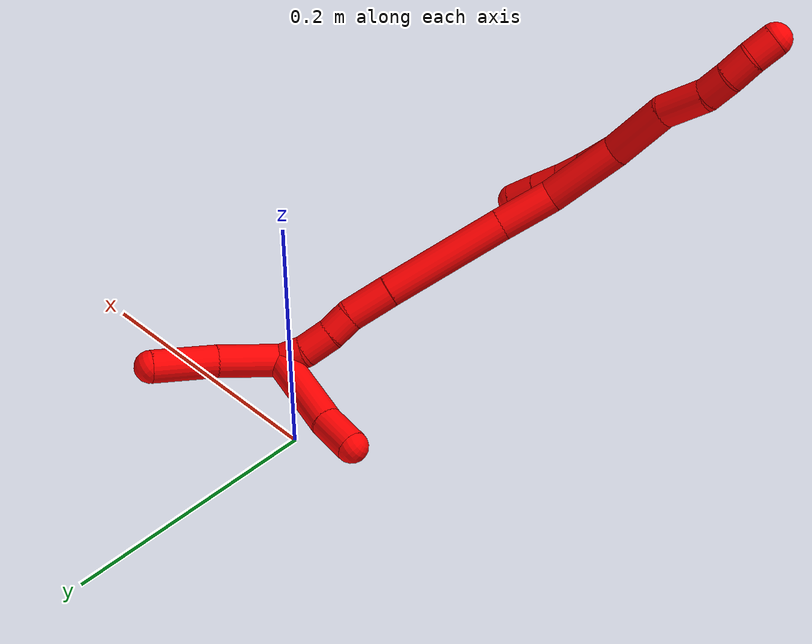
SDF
<sdf version="1.7">
 <world name="default">
  <model name="2">
   <static>0</static>
   <link name="2">
    <collision name="collision-cylinder-e_1_2_8">
     <pose>0.001265 0.006139 0.024321 -0.247232 0.050405 -0.006264</pose>
     <geometry><cylinder><radius>0.0125</radius><length>0.050232</length></cylinder></geometry>
     <surface>
      <friction><ode><mu>1.16</mu><mu2>1.16</mu2><slip1>0</slip1><slip2>0</slip2></ode></friction>
      <contact><ode><kp>1e+06</kp><kd>1</kd><max_vel>0</max_vel><min_depth>0.001</min_depth></ode></contact>
     </surface>
    </collision>
    <visual name="visual-cylinder-e_1_2_8">
     <pose>0.001265 0.006139 0.024321 -0.247232 0.050405 -0.006264</pose>
     <geometry><cylinder><radius>0.0125</radius><length>0.050232</length></cylinder></geometry>
     <material><ambient>1 0 0 1</ambient></material>
    </visual>
    <collision name="collision-cylinder-e_2_8_9">
     <pose>-0.001714 0.016416 0.065754 -0.237306 -0.236589 0.028335</pose>
     <geometry><cylinder><radius>0.0125</radius><length>0.036219</length></cylinder></geometry>
     <surface>
      <friction><ode><mu>1.16</mu><mu2>1.16</mu2><slip1>0</slip1><slip2>0</slip2></ode></friction>
      <contact><ode><kp>1e+06</kp><kd>1</kd><max_vel>0</max_vel><min_depth>0.001</min_depth></ode></contact>
     </surface>
    </collision>
    <visual name="visual-cylinder-e_2_8_9">
     <pose>-0.001714 0.016416 0.065754 -0.237306 -0.236589 0.028335</pose>
     <geometry><cylinder><radius>0.0125</radius><length>0.036219</length></cylinder></geometry>
     <material><ambient>1 0 0 1</ambient></material>
    </visual>
    <collision name="collision-cylinder-e_3_9_10">
     <pose>-0.00555 0.022514 0.093428 -0.18342 0.038003 -0.003495</pose>
     <geometry><cylinder><radius>0.0125</radius><length>0.0215</length></cylinder></geometry>
     <surface>
      <friction><ode><mu>1.16</mu><mu2>1.16</mu2><slip1>0</slip1><slip2>0</slip2></ode></friction>
      <contact><ode><kp>1e+06</kp><kd>1</kd><max_vel>0</max_vel><min_depth>0.001</min_depth></ode></contact>
     </surface>
    </collision>
    <visual name="visual-cylinder-e_3_9_10">
     <pose>-0.00555 0.022514 0.093428 -0.18342 0.038003 -0.003495</pose>
     <geometry><cylinder><radius>0.0125</radius><length>0.0215</length></cylinder></geometry>
     <material><ambient>1 0 0 1</ambient></material>
    </visual>
    <collision name="collision-cylinder-e_4_10_11">
     <pose>-0.003965 0.024786 0.114809 -0.02889 0.108295 -0.001566</pose>
     <geometry><cylinder><radius>0.0125</radius><length>0.021776</length></cylinder></geometry>
     <surface>
      <friction><ode><mu>1.16</mu><mu2>1.16</mu2><slip1>0</slip1><slip2>0</slip2></ode></friction>
      <contact><ode><kp>1e+06</kp><kd>1</kd><max_vel>0</max_vel><min_depth>0.001</min_depth></ode></contact>
     </surface>
    </collision>
    <visual name="visual-cylinder-e_4_10_11">
     <pose>-0.003965 0.024786 0.114809 -0.02889 0.108295 -0.001566</pose>
     <geometry><cylinder><radius>0.0125</radius><length>0.021776</length></cylinder></geometry>
     <material><ambient>1 0 0 1</ambient></material>
    </visual>
    <collision name="collision-cylinder-e_5_11_6">
     <pose>-0.002206 0.023379 0.135602 0.170775 0.057397 0.004914</pose>
     <geometry><cylinder><radius>0.0125</radius><length>0.020274</length></cylinder></geometry>
     <surface>
      <friction><ode><mu>1.16</mu><mu2>1.16</mu2><slip1>0</slip1><slip2>0</slip2></ode></friction>
      <contact><ode><kp>1e+06</kp><kd>1</kd><max_vel>0</max_vel><min_depth>0.001</min_depth></ode></contact>
     </surface>
    </collision>
    <visual name="visual-cylinder-e_5_11_6">
     <pose>-0.002206 0.023379 0.135602 0.170775 0.057397 0.004914</pose>
     <geometry><cylinder><radius>0.0125</radius><length>0.020274</length></cylinder></geometry>
     <material><ambient>1 0 0 1</ambient></material>
    </visual>
    <collision name="collision-cylinder-e_1_2_12">
     <pose>0.001522 -0.007551 -0.014632 2.66516 0.092159 0.375328</pose>
     <geometry><cylinder><radius>0.0125</radius><length>0.033072</length></cylinder></geometry>
     <surface>
      <friction><ode><mu>1.16</mu><mu2>1.16</mu2><slip1>0</slip1><slip2>0</slip2></ode></friction>
      <contact><ode><kp>1e+06</kp><kd>1</kd><max_vel>0</max_vel><min_depth>0.001</min_depth></ode></contact>
     </surface>
    </collision>
    <visual name="visual-cylinder-e_1_2_12">
     <pose>0.001522 -0.007551 -0.014632 2.66516 0.092159 0.375328</pose>
     <geometry><cylinder><radius>0.0125</radius><length>0.033072</length></cylinder></geometry>
     <material><ambient>1 0 0 1</ambient></material>
    </visual>
    <collision name="collision-cylinder-e_2_12_13">
     <pose>0.004649 -0.017328 -0.040078 2.93866 0.144363 1.23505</pose>
     <geometry><cylinder><radius>0.0125</radius><length>0.022313</length></cylinder></geometry>
     <surface>
      <friction><ode><mu>1.16</mu><mu2>1.16</mu2><slip1>0</slip1><slip2>0</slip2></ode></friction>
      <contact><ode><kp>1e+06</kp><kd>1</kd><max_vel>0</max_vel><min_depth>0.001</min_depth></ode></contact>
     </surface>
    </collision>
    <visual name="visual-cylinder-e_2_12_13">
     <pose>0.004649 -0.017328 -0.040078 2.93866 0.144363 1.23505</pose>
     <geometry><cylinder><radius>0.0125</radius><length>0.022313</length></cylinder></geometry>
     <material><ambient>1 0 0 1</ambient></material>
    </visual>
    <collision name="collision-cylinder-e_3_13_14">
     <pose>0.008585 -0.020935 -0.061605 3.01326 0.212531 2.05728</pose>
     <geometry><cylinder><radius>0.0125</radius><length>0.022102</length></cylinder></geometry>
     <surface>
      <friction><ode><mu>1.16</mu><mu2>1.16</mu2><slip1>0</slip1><slip2>0</slip2></ode></friction>
      <contact><ode><kp>1e+06</kp><kd>1</kd><max_vel>0</max_vel><min_depth>0.001</min_depth></ode></contact>
     </surface>
    </collision>
    <visual name="visual-cylinder-e_3_13_14">
     <pose>0.008585 -0.020935 -0.061605 3.01326 0.212531 2.05728</pose>
     <geometry><cylinder><radius>0.0125</radius><length>0.022102</length></cylinder></geometry>
     <material><ambient>1 0 0 1</ambient></material>
    </visual>
    <collision name="collision-cylinder-e_4_14_5">
     <pose>0.01314 -0.023887 -0.083241 2.99888 0.198888 1.89829</pose>
     <geometry><cylinder><radius>0.0125</radius><length>0.022513</length></cylinder></geometry>
     <surface>
      <friction><ode><mu>1.16</mu><mu2>1.16</mu2><slip1>0</slip1><slip2>0</slip2></ode></friction>
      <contact><ode><kp>1e+06</kp><kd>1</kd><max_vel>0</max_vel><min_depth>0.001</min_depth></ode></contact>
     </surface>
    </collision>
    <visual name="visual-cylinder-e_4_14_5">
     <pose>0.01314 -0.023887 -0.083241 2.99888 0.198888 1.89829</pose>
     <geometry><cylinder><radius>0.0125</radius><length>0.022513</length></cylinder></geometry>
     <material><ambient>1 0 0 1</ambient></material>
    </visual>
    <collision name="collision-cylinder-e_1_2_15">
     <pose>-0.000162 0.000559 -0.030176 -3.12307 -0.005376 0.564905</pose>
     <geometry><cylinder><radius>0.0125</radius><length>0.060362</length></cylinder></geometry>
     <surface>
      <friction><ode><mu>1.16</mu><mu2>1.16</mu2><slip1>0</slip1><slip2>0</slip2></ode></friction>
      <contact><ode><kp>1e+06</kp><kd>1</kd><max_vel>0</max_vel><min_depth>0.001</min_depth></ode></contact>
     </surface>
    </collision>
    <visual name="visual-cylinder-e_1_2_15">
     <pose>-0.000162 0.000559 -0.030176 -3.12307 -0.005376 0.564905</pose>
     <geometry><cylinder><radius>0.0125</radius><length>0.060362</length></cylinder></geometry>
     <material><ambient>1 0 0 1</ambient></material>
    </visual>
    <collision name="collision-cylinder-e_2_15_16">
     <pose>0.001242 0.007621 -0.081128 -2.83826 0.071815 -0.461688</pose>
     <geometry><cylinder><radius>0.0125</radius><length>0.043654</length></cylinder></geometry>
     <surface>
      <friction><ode><mu>1.16</mu><mu2>1.16</mu2><slip1>0</slip1><slip2>0</slip2></ode></friction>
      <contact><ode><kp>1e+06</kp><kd>1</kd><max_vel>0</max_vel><min_depth>0.001</min_depth></ode></contact>
     </surface>
    </collision>
    <visual name="visual-cylinder-e_2_15_16">
     <pose>0.001242 0.007621 -0.081128 -2.83826 0.071815 -0.461688</pose>
     <geometry><cylinder><radius>0.0125</radius><length>0.043654</length></cylinder></geometry>
     <material><ambient>1 0 0 1</ambient></material>
    </visual>
    <collision name="collision-cylinder-e_3_16_17">
     <pose>0.005138 0.030516 -0.147686 -2.79777 0.047885 -0.274124</pose>
     <geometry><cylinder><radius>0.0125</radius><length>0.097367</length></cylinder></geometry>
     <surface>
      <friction><ode><mu>1.16</mu><mu2>1.16</mu2><slip1>0</slip1><slip2>0</slip2></ode></friction>
      <contact><ode><kp>1e+06</kp><kd>1</kd><max_vel>0</max_vel><min_depth>0.001</min_depth></ode></contact>
     </surface>
    </collision>
    <visual name="visual-cylinder-e_3_16_17">
     <pose>0.005138 0.030516 -0.147686 -2.79777 0.047885 -0.274124</pose>
     <geometry><cylinder><radius>0.0125</radius><length>0.097367</length></cylinder></geometry>
     <material><ambient>1 0 0 1</ambient></material>
    </visual>
    <collision name="collision-cylinder-e_4_17_18">
     <pose>0.008026 0.052059 -0.210042 -2.8402 0.03212 -0.210764</pose>
     <geometry><cylinder><radius>0.0125</radius><length>0.034729</length></cylinder></geometry>
     <surface>
      <friction><ode><mu>1.16</mu><mu2>1.16</mu2><slip1>0</slip1><slip2>0</slip2></ode></friction>
      <contact><ode><kp>1e+06</kp><kd>1</kd><max_vel>0</max_vel><min_depth>0.001</min_depth></ode></contact>
     </surface>
    </collision>
    <visual name="visual-cylinder-e_4_17_18">
     <pose>0.008026 0.052059 -0.210042 -2.8402 0.03212 -0.210764</pose>
     <geometry><cylinder><radius>0.0125</radius><length>0.034729</length></cylinder></geometry>
     <material><ambient>1 0 0 1</ambient></material>
    </visual>
    <collision name="collision-cylinder-e_5_18_19">
     <pose>0.006835 0.059564 -0.236188 -2.90067 -0.175597 1.25747</pose>
     <geometry><cylinder><radius>0.0125</radius><length>0.020023</length></cylinder></geometry>
     <surface>
      <friction><ode><mu>1.16</mu><mu2>1.16</mu2><slip1>0</slip1><slip2>0</slip2></ode></friction>
      <contact><ode><kp>1e+06</kp><kd>1</kd><max_vel>0</max_vel><min_depth>0.001</min_depth></ode></contact>
     </surface>
    </collision>
    <visual name="visual-cylinder-e_5_18_19">
     <pose>0.006835 0.059564 -0.236188 -2.90067 -0.175597 1.25747</pose>
     <geometry><cylinder><radius>0.0125</radius><length>0.020023</length></cylinder></geometry>
     <material><ambient>1 0 0 1</ambient></material>
    </visual>
    <collision name="collision-cylinder-e_6_19_20">
     <pose>0.00497 0.064834 -0.257314 -2.89414 -0.009684 0.077829</pose>
     <geometry><cylinder><radius>0.0125</radius><length>0.023834</length></cylinder></geometry>
     <surface>
      <friction><ode><mu>1.16</mu><mu2>1.16</mu2><slip1>0</slip1><slip2>0</slip2></ode></friction>
      <contact><ode><kp>1e+06</kp><kd>1</kd><max_vel>0</max_vel><min_depth>0.001</min_depth></ode></contact>
     </surface>
    </collision>
    <visual name="visual-cylinder-e_6_19_20">
     <pose>0.00497 0.064834 -0.257314 -2.89414 -0.009684 0.077829</pose>
     <geometry><cylinder><radius>0.0125</radius><length>0.023834</length></cylinder></geometry>
     <material><ambient>1 0 0 1</ambient></material>
    </visual>
    <collision name="collision-cylinder-e_7_20_1">
     <pose>0.007142 0.068825 -0.278559 -3.03146 0.230411 -2.25251</pose>
     <geometry><cylinder><radius>0.0125</radius><length>0.02003</length></cylinder></geometry>
     <surface>
      <friction><ode><mu>1.16</mu><mu2>1.16</mu2><slip1>0</slip1><slip2>0</slip2></ode></friction>
      <contact><ode><kp>1e+06</kp><kd>1</kd><max_vel>0</max_vel><min_depth>0.001</min_depth></ode></contact>
     </surface>
    </collision>
    <visual name="visual-cylinder-e_7_20_1">
     <pose>0.007142 0.068825 -0.278559 -3.03146 0.230411 -2.25251</pose>
     <geometry><cylinder><radius>0.0125</radius><length>0.02003</length></cylinder></geometry>
     <material><ambient>1 0 0 1</ambient></material>
    </visual>
    <collision name="collision-cylinder-e_1_1_21">
     <pose>-0.020013 0.08558 -0.279529 -1.06331 -1.02342 0.638046</pose>
     <geometry><cylinder><radius>0.0125</radius><length>0.06896</length></cylinder></geometry>
     <surface>
      <friction><ode><mu>1.16</mu><mu2>1.16</mu2><slip1>0</slip1><slip2>0</slip2></ode></friction>
      <contact><ode><kp>1e+06</kp><kd>1</kd><max_vel>0</max_vel><min_depth>0.001</min_depth></ode></contact>
     </surface>
    </collision>
    <visual name="visual-cylinder-e_1_1_21">
     <pose>-0.020013 0.08558 -0.279529 -1.06331 -1.02342 0.638046</pose>
     <geometry><cylinder><radius>0.0125</radius><length>0.06896</length></cylinder></geometry>
     <material><ambient>1 0 0 1</ambient></material>
    </visual>
    <collision name="collision-cylinder-e_2_21_4">
     <pose>-0.062437 0.107426 -0.264948 -0.81053 -0.990813 0.45559</pose>
     <geometry><cylinder><radius>0.0125</radius><length>0.03104</length></cylinder></geometry>
     <surface>
      <friction><ode><mu>1.16</mu><mu2>1.16</mu2><slip1>0</slip1><slip2>0</slip2></ode></friction>
      <contact><ode><kp>1e+06</kp><kd>1</kd><max_vel>0</max_vel><min_depth>0.001</min_depth></ode></contact>
     </surface>
    </collision>
    <visual name="visual-cylinder-e_2_21_4">
     <pose>-0.062437 0.107426 -0.264948 -0.81053 -0.990813 0.45559</pose>
     <geometry><cylinder><radius>0.0125</radius><length>0.03104</length></cylinder></geometry>
     <material><ambient>1 0 0 1</ambient></material>
    </visual>
    <collision name="collision-cylinder-e_1_1_22">
     <pose>0.022082 0.08386 -0.304579 -2.4341 0.532216 -1.27171</pose>
     <geometry><cylinder><radius>0.0125</radius><length>0.049868</length></cylinder></geometry>
     <surface>
      <friction><ode><mu>1.16</mu><mu2>1.16</mu2><slip1>0</slip1><slip2>0</slip2></ode></friction>
      <contact><ode><kp>1e+06</kp><kd>1</kd><max_vel>0</max_vel><min_depth>0.001</min_depth></ode></contact>
     </surface>
    </collision>
    <visual name="visual-cylinder-e_1_1_22">
     <pose>0.022082 0.08386 -0.304579 -2.4341 0.532216 -1.27171</pose>
     <geometry><cylinder><radius>0.0125</radius><length>0.049868</length></cylinder></geometry>
     <material><ambient>1 0 0 1</ambient></material>
    </visual>
    <collision name="collision-cylinder-e_2_22_3">
     <pose>0.045738 0.11331 -0.33726 -2.3834 0.45446 -1.05182</pose>
     <geometry><cylinder><radius>0.0125</radius><length>0.050132</length></cylinder></geometry>
     <surface>
      <friction><ode><mu>1.16</mu><mu2>1.16</mu2><slip1>0</slip1><slip2>0</slip2></ode></friction>
      <contact><ode><kp>1e+06</kp><kd>1</kd><max_vel>0</max_vel><min_depth>0.001</min_depth></ode></contact>
     </surface>
    </collision>
    <visual name="visual-cylinder-e_2_22_3">
     <pose>0.045738 0.11331 -0.33726 -2.3834 0.45446 -1.05182</pose>
     <geometry><cylinder><radius>0.0125</radius><length>0.050132</length></cylinder></geometry>
     <material><ambient>1 0 0 1</ambient></material>
    </visual>
    <collision name="collision-sphere-3">
     <pose>0.056741 0.128796 -0.353613 0 -0 0</pose>
     <geometry><sphere><radius>0.0125</radius></sphere></geometry>
     <surface>
      <friction><ode><mu>1.16</mu><mu2>1.16</mu2><slip1>0</slip1><slip2>0</slip2></ode></friction>
      <contact><ode><kp>1e+06</kp><kd>1</kd><max_vel>0</max_vel><min_depth>0.001</min_depth></ode></contact>
     </surface>
    </collision>
    <visual name="visual-sphere-3">
     <pose>0.056741 0.128796 -0.353613 0 -0 0</pose>
     <geometry><sphere><radius>0.0125</radius></sphere></geometry>
     <material><ambient>1 0 0 1</ambient></material>
    </visual>
    <collision name="collision-sphere-22">
     <pose>0.034734 0.097824 -0.320908 0 -0 0</pose>
     <geometry><sphere><radius>0.0125</radius></sphere></geometry>
     <surface>
      <friction><ode><mu>1.16</mu><mu2>1.16</mu2><slip1>0</slip1><slip2>0</slip2></ode></friction>
      <contact><ode><kp>1e+06</kp><kd>1</kd><max_vel>0</max_vel><min_depth>0.001</min_depth></ode></contact>
     </surface>
    </collision>
    <visual name="visual-sphere-22">
     <pose>0.034734 0.097824 -0.320908 0 -0 0</pose>
     <geometry><sphere><radius>0.0125</radius></sphere></geometry>
     <material><ambient>1 0 0 1</ambient></material>
    </visual>
    <collision name="collision-sphere-4">
     <pose>-0.075419 0.11359 -0.259087 0 -0 0</pose>
     <geometry><sphere><radius>0.0125</radius></sphere></geometry>
     <surface>
      <friction><ode><mu>1.16</mu><mu2>1.16</mu2><slip1>0</slip1><slip2>0</slip2></ode></friction>
      <contact><ode><kp>1e+06</kp><kd>1</kd><max_vel>0</max_vel><min_depth>0.001</min_depth></ode></contact>
     </surface>
    </collision>
    <visual name="visual-sphere-4">
     <pose>-0.075419 0.11359 -0.259087 0 -0 0</pose>
     <geometry><sphere><radius>0.0125</radius></sphere></geometry>
     <material><ambient>1 0 0 1</ambient></material>
    </visual>
    <collision name="collision-sphere-21">
     <pose>-0.049455 0.101263 -0.270808 0 -0 0</pose>
     <geometry><sphere><radius>0.0125</radius></sphere></geometry>
     <surface>
      <friction><ode><mu>1.16</mu><mu2>1.16</mu2><slip1>0</slip1><slip2>0</slip2></ode></friction>
      <contact><ode><kp>1e+06</kp><kd>1</kd><max_vel>0</max_vel><min_depth>0.001</min_depth></ode></contact>
     </surface>
    </collision>
    <visual name="visual-sphere-21">
     <pose>-0.049455 0.101263 -0.270808 0 -0 0</pose>
     <geometry><sphere><radius>0.0125</radius></sphere></geometry>
     <material><ambient>1 0 0 1</ambient></material>
    </visual>
    <collision name="collision-sphere-1">
     <pose>0.009429 0.069896 -0.28825 0 -0 0</pose>
     <geometry><sphere><radius>0.0125</radius></sphere></geometry>
     <surface>
      <friction><ode><mu>1.16</mu><mu2>1.16</mu2><slip1>0</slip1><slip2>0</slip2></ode></friction>
      <contact><ode><kp>1e+06</kp><kd>1</kd><max_vel>0</max_vel><min_depth>0.001</min_depth></ode></contact>
     </surface>
    </collision>
    <visual name="visual-sphere-1">
     <pose>0.009429 0.069896 -0.28825 0 -0 0</pose>
     <geometry><sphere><radius>0.0125</radius></sphere></geometry>
     <material><ambient>1 0 0 1</ambient></material>
    </visual>
    <collision name="collision-sphere-6">
     <pose>-0.001625 0.021659 0.145575 0 -0 0</pose>
     <geometry><sphere><radius>0.0125</radius></sphere></geometry>
     <surface>
      <friction><ode><mu>1.16</mu><mu2>1.16</mu2><slip1>0</slip1><slip2>0</slip2></ode></friction>
      <contact><ode><kp>1e+06</kp><kd>1</kd><max_vel>0</max_vel><min_depth>0.001</min_depth></ode></contact>
     </surface>
    </collision>
    <visual name="visual-sphere-6">
     <pose>-0.001625 0.021659 0.145575 0 -0 0</pose>
     <geometry><sphere><radius>0.0125</radius></sphere></geometry>
     <material><ambient>1 0 0 1</ambient></material>
    </visual>
    <collision name="collision-sphere-11">
     <pose>-0.002788 0.025098 0.125629 0 -0 0</pose>
     <geometry><sphere><radius>0.0125</radius></sphere></geometry>
     <surface>
      <friction><ode><mu>1.16</mu><mu2>1.16</mu2><slip1>0</slip1><slip2>0</slip2></ode></friction>
      <contact><ode><kp>1e+06</kp><kd>1</kd><max_vel>0</max_vel><min_depth>0.001</min_depth></ode></contact>
     </surface>
    </collision>
    <visual name="visual-sphere-11">
     <pose>-0.002788 0.025098 0.125629 0 -0 0</pose>
     <geometry><sphere><radius>0.0125</radius></sphere></geometry>
     <material><ambient>1 0 0 1</ambient></material>
    </visual>
    <collision name="collision-sphere-10">
     <pose>-0.005142 0.024473 0.10399 0 -0 0</pose>
     <geometry><sphere><radius>0.0125</radius></sphere></geometry>
     <surface>
      <friction><ode><mu>1.16</mu><mu2>1.16</mu2><slip1>0</slip1><slip2>0</slip2></ode></friction>
      <contact><ode><kp>1e+06</kp><kd>1</kd><max_vel>0</max_vel><min_depth>0.001</min_depth></ode></contact>
     </surface>
    </collision>
    <visual name="visual-sphere-10">
     <pose>-0.005142 0.024473 0.10399 0 -0 0</pose>
     <geometry><sphere><radius>0.0125</radius></sphere></geometry>
     <material><ambient>1 0 0 1</ambient></material>
    </visual>
    <collision name="collision-sphere-9">
     <pose>-0.005958 0.020555 0.082866 0 -0 0</pose>
     <geometry><sphere><radius>0.0125</radius></sphere></geometry>
     <surface>
      <friction><ode><mu>1.16</mu><mu2>1.16</mu2><slip1>0</slip1><slip2>0</slip2></ode></friction>
      <contact><ode><kp>1e+06</kp><kd>1</kd><max_vel>0</max_vel><min_depth>0.001</min_depth></ode></contact>
     </surface>
    </collision>
    <visual name="visual-sphere-9">
     <pose>-0.005958 0.020555 0.082866 0 -0 0</pose>
     <geometry><sphere><radius>0.0125</radius></sphere></geometry>
     <material><ambient>1 0 0 1</ambient></material>
    </visual>
    <collision name="collision-sphere-2">
     <geometry><sphere><radius>0.0125</radius></sphere></geometry>
     <surface>
      <friction><ode><mu>1.16</mu><mu2>1.16</mu2><slip1>0</slip1><slip2>0</slip2></ode></friction>
      <contact><ode><kp>1e+06</kp><kd>1</kd><max_vel>0</max_vel><min_depth>0.001</min_depth></ode></contact>
     </surface>
    </collision>
    <visual name="visual-sphere-2">
     <geometry><sphere><radius>0.0125</radius></sphere></geometry>
     <material><ambient>1 0 0 1</ambient></material>
    </visual>
    <collision name="collision-sphere-19">
     <pose>0.005086 0.061916 -0.245761 0 -0 0</pose>
     <geometry><sphere><radius>0.0125</radius></sphere></geometry>
     <surface>
      <friction><ode><mu>1.16</mu><mu2>1.16</mu2><slip1>0</slip1><slip2>0</slip2></ode></friction>
      <contact><ode><kp>1e+06</kp><kd>1</kd><max_vel>0</max_vel><min_depth>0.001</min_depth></ode></contact>
     </surface>
    </collision>
    <visual name="visual-sphere-19">
     <pose>0.005086 0.061916 -0.245761 0 -0 0</pose>
     <geometry><sphere><radius>0.0125</radius></sphere></geometry>
     <material><ambient>1 0 0 1</ambient></material>
    </visual>
    <collision name="collision-sphere-8">
     <pose>0.002531 0.012277 0.048642 0 -0 0</pose>
     <geometry><sphere><radius>0.0125</radius></sphere></geometry>
     <surface>
      <friction><ode><mu>1.16</mu><mu2>1.16</mu2><slip1>0</slip1><slip2>0</slip2></ode></friction>
      <contact><ode><kp>1e+06</kp><kd>1</kd><max_vel>0</max_vel><min_depth>0.001</min_depth></ode></contact>
     </surface>
    </collision>
    <visual name="visual-sphere-8">
     <pose>0.002531 0.012277 0.048642 0 -0 0</pose>
     <geometry><sphere><radius>0.0125</radius></sphere></geometry>
     <material><ambient>1 0 0 1</ambient></material>
    </visual>
    <collision name="collision-sphere-12">
     <pose>0.003044 -0.015103 -0.029264 0 -0 0</pose>
     <geometry><sphere><radius>0.0125</radius></sphere></geometry>
     <surface>
      <friction><ode><mu>1.16</mu><mu2>1.16</mu2><slip1>0</slip1><slip2>0</slip2></ode></friction>
      <contact><ode><kp>1e+06</kp><kd>1</kd><max_vel>0</max_vel><min_depth>0.001</min_depth></ode></contact>
     </surface>
    </collision>
    <visual name="visual-sphere-12">
     <pose>0.003044 -0.015103 -0.029264 0 -0 0</pose>
     <geometry><sphere><radius>0.0125</radius></sphere></geometry>
     <material><ambient>1 0 0 1</ambient></material>
    </visual>
    <collision name="collision-sphere-13">
     <pose>0.006254 -0.019553 -0.050892 0 -0 0</pose>
     <geometry><sphere><radius>0.0125</radius></sphere></geometry>
     <surface>
      <friction><ode><mu>1.16</mu><mu2>1.16</mu2><slip1>0</slip1><slip2>0</slip2></ode></friction>
      <contact><ode><kp>1e+06</kp><kd>1</kd><max_vel>0</max_vel><min_depth>0.001</min_depth></ode></contact>
     </surface>
    </collision>
    <visual name="visual-sphere-13">
     <pose>0.006254 -0.019553 -0.050892 0 -0 0</pose>
     <geometry><sphere><radius>0.0125</radius></sphere></geometry>
     <material><ambient>1 0 0 1</ambient></material>
    </visual>
    <collision name="collision-sphere-14">
     <pose>0.010916 -0.022318 -0.072319 0 -0 0</pose>
     <geometry><sphere><radius>0.0125</radius></sphere></geometry>
     <surface>
      <friction><ode><mu>1.16</mu><mu2>1.16</mu2><slip1>0</slip1><slip2>0</slip2></ode></friction>
      <contact><ode><kp>1e+06</kp><kd>1</kd><max_vel>0</max_vel><min_depth>0.001</min_depth></ode></contact>
     </surface>
    </collision>
    <visual name="visual-sphere-14">
     <pose>0.010916 -0.022318 -0.072319 0 -0 0</pose>
     <geometry><sphere><radius>0.0125</radius></sphere></geometry>
     <material><ambient>1 0 0 1</ambient></material>
    </visual>
    <collision name="collision-sphere-5">
     <pose>0.015364 -0.025457 -0.094164 0 -0 0</pose>
     <geometry><sphere><radius>0.0125</radius></sphere></geometry>
     <surface>
      <friction><ode><mu>1.16</mu><mu2>1.16</mu2><slip1>0</slip1><slip2>0</slip2></ode></friction>
      <contact><ode><kp>1e+06</kp><kd>1</kd><max_vel>0</max_vel><min_depth>0.001</min_depth></ode></contact>
     </surface>
    </collision>
    <visual name="visual-sphere-5">
     <pose>0.015364 -0.025457 -0.094164 0 -0 0</pose>
     <geometry><sphere><radius>0.0125</radius></sphere></geometry>
     <material><ambient>1 0 0 1</ambient></material>
    </visual>
    <collision name="collision-sphere-15">
     <pose>-0.000325 0.001118 -0.060351 0 -0 0</pose>
     <geometry><sphere><radius>0.0125</radius></sphere></geometry>
     <surface>
      <friction><ode><mu>1.16</mu><mu2>1.16</mu2><slip1>0</slip1><slip2>0</slip2></ode></friction>
      <contact><ode><kp>1e+06</kp><kd>1</kd><max_vel>0</max_vel><min_depth>0.001</min_depth></ode></contact>
     </surface>
    </collision>
    <visual name="visual-sphere-15">
     <pose>-0.000325 0.001118 -0.060351 0 -0 0</pose>
     <geometry><sphere><radius>0.0125</radius></sphere></geometry>
     <material><ambient>1 0 0 1</ambient></material>
    </visual>
    <collision name="collision-sphere-16">
     <pose>0.002808 0.014124 -0.101905 0 -0 0</pose>
     <geometry><sphere><radius>0.0125</radius></sphere></geometry>
     <surface>
      <friction><ode><mu>1.16</mu><mu2>1.16</mu2><slip1>0</slip1><slip2>0</slip2></ode></friction>
      <contact><ode><kp>1e+06</kp><kd>1</kd><max_vel>0</max_vel><min_depth>0.001</min_depth></ode></contact>
     </surface>
    </collision>
    <visual name="visual-sphere-16">
     <pose>0.002808 0.014124 -0.101905 0 -0 0</pose>
     <geometry><sphere><radius>0.0125</radius></sphere></geometry>
     <material><ambient>1 0 0 1</ambient></material>
    </visual>
    <collision name="collision-sphere-17">
     <pose>0.007468 0.046907 -0.193468 0 -0 0</pose>
     <geometry><sphere><radius>0.0125</radius></sphere></geometry>
     <surface>
      <friction><ode><mu>1.16</mu><mu2>1.16</mu2><slip1>0</slip1><slip2>0</slip2></ode></friction>
      <contact><ode><kp>1e+06</kp><kd>1</kd><max_vel>0</max_vel><min_depth>0.001</min_depth></ode></contact>
     </surface>
    </collision>
    <visual name="visual-sphere-17">
     <pose>0.007468 0.046907 -0.193468 0 -0 0</pose>
     <geometry><sphere><radius>0.0125</radius></sphere></geometry>
     <material><ambient>1 0 0 1</ambient></material>
    </visual>
    <collision name="collision-sphere-18">
     <pose>0.008584 0.057212 -0.226615 0 -0 0</pose>
     <geometry><sphere><radius>0.0125</radius></sphere></geometry>
     <surface>
      <friction><ode><mu>1.16</mu><mu2>1.16</mu2><slip1>0</slip1><slip2>0</slip2></ode></friction>
      <contact><ode><kp>1e+06</kp><kd>1</kd><max_vel>0</max_vel><min_depth>0.001</min_depth></ode></contact>
     </surface>
    </collision>
    <visual name="visual-sphere-18">
     <pose>0.008584 0.057212 -0.226615 0 -0 0</pose>
     <geometry><sphere><radius>0.0125</radius></sphere></geometry>
     <material><ambient>1 0 0 1</ambient></material>
    </visual>
    <collision name="collision-sphere-20">
     <pose>0.004855 0.067753 -0.268868 0 -0 0</pose>
     <geometry><sphere><radius>0.0125</radius></sphere></geometry>
     <surface>
      <friction><ode><mu>1.16</mu><mu2>1.16</mu2><slip1>0</slip1><slip2>0</slip2></ode></friction>
      <contact><ode><kp>1e+06</kp><kd>1</kd><max_vel>0</max_vel><min_depth>0.001</min_depth></ode></contact>
     </surface>
    </collision>
    <visual name="visual-sphere-20">
     <pose>0.004855 0.067753 -0.268868 0 -0 0</pose>
     <geometry><sphere><radius>0.0125</radius></sphere></geometry>
     <material><ambient>1 0 0 1</ambient></material>
    </visual>
    <inertial>
     <pose>0.002251 0.038833 -0.129104 0 -0 0</pose>
     <mass>0.75</mass>
     <inertia>
      <ixx>0.000139</ixx>
      <ixy>0</ixy>
      <ixz>0</ixz>
      <iyy>-6.1e-05</iyy>
      <iyz>0</iyz>
      <izz>-7.4e-05</izz>
     </inertia>
    </inertial>
   </link>
   <pose>-0.069852 -0.266618 0.162137 0.67658 -0.629252 -0.040049</pose>
  </model>
 </world>
</sdf>
